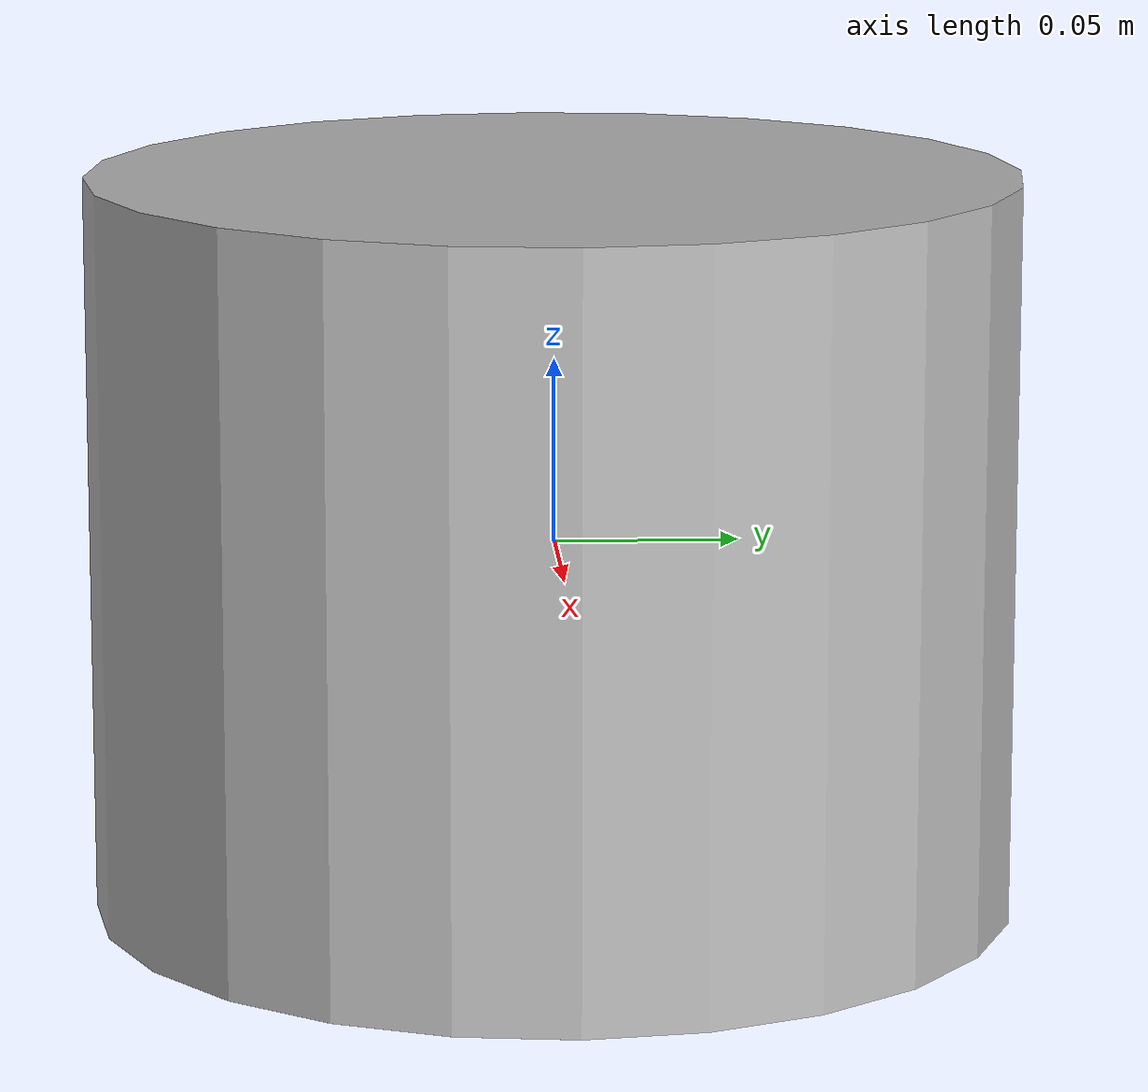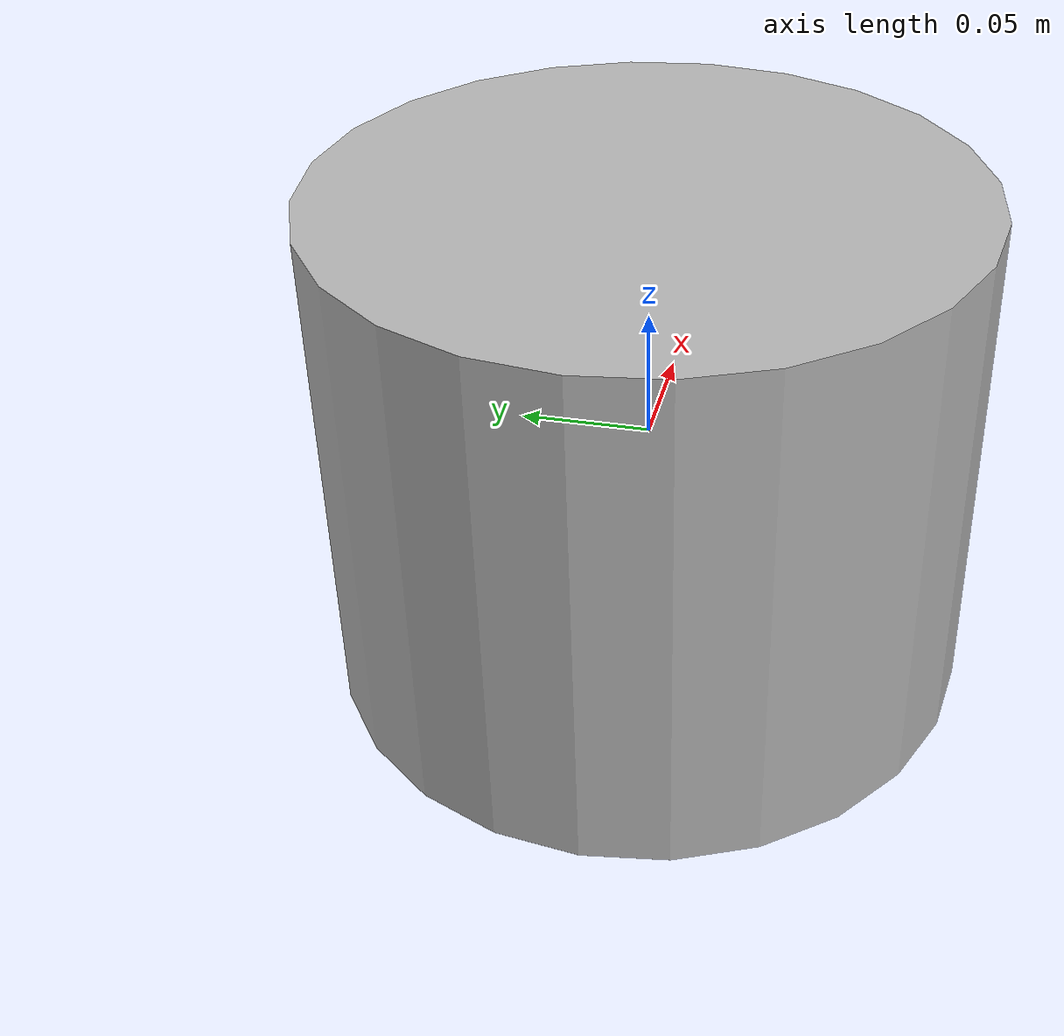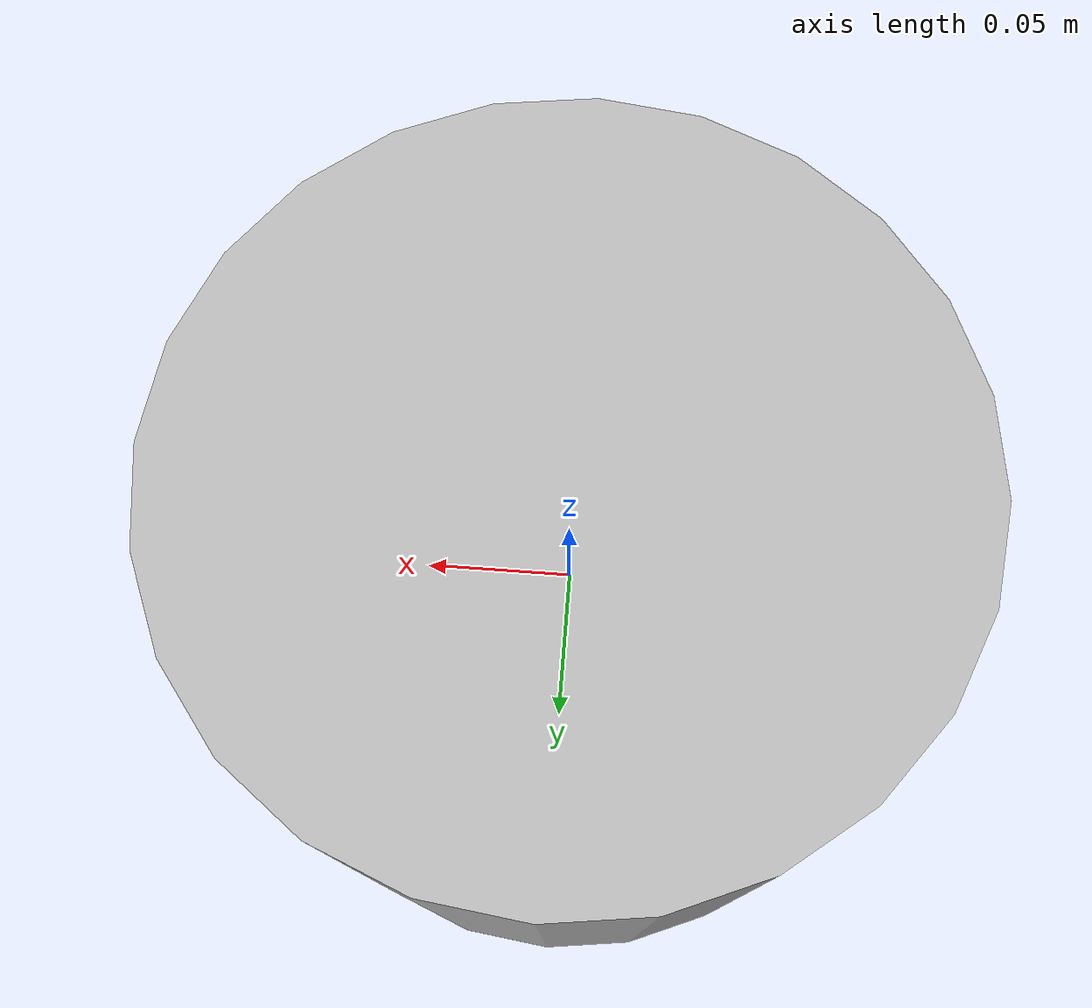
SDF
<?xml version='1.0' encoding='utf-8'?>
<sdf version="1.7">
  <model name="geometry_cylinder">
    <link name="link">
      <visual name="link_visual">
        <geometry>
          <cylinder>
            <length>0.2</length>
            <radius>0.125</radius>
          </cylinder>
        </geometry>
      </visual>
      <collision name="link_collision">
        <geometry>
          <cylinder>
            <length>0.2</length>
            <radius>0.125</radius>
          </cylinder>
        </geometry>
      </collision>
      <inertial>
        <mass>1.23</mass>
        <inertia>
          <ixx>0.0076875</ixx>
          <ixy>0</ixy>
          <ixz>0</ixz>
          <iyy>0.0076875</iyy>
          <iyz>0</iyz>
          <izz>0.0076875</izz>
        </inertia>
      </inertial>
    </link>
  </model>
</sdf>
